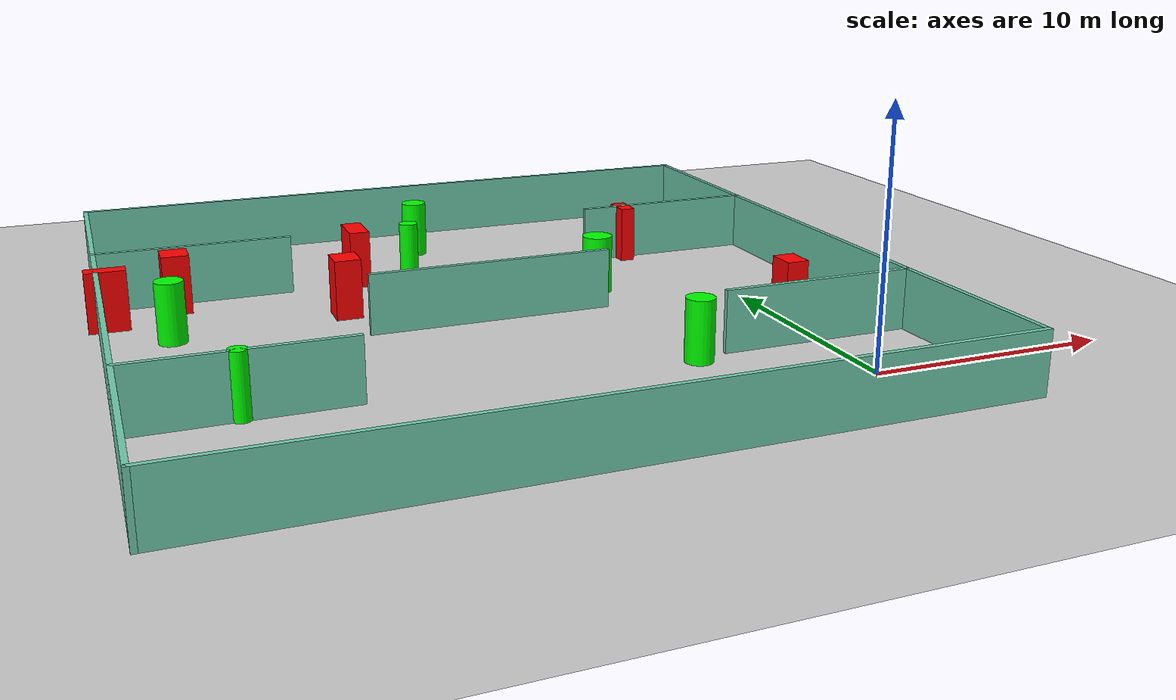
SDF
<sdf version="1.7">
 <world name="default">
  <light name="sun" type="directional">
   <pose>0 0 10 0 -0 0</pose>
   <diffuse>0.8 0.8 0.8 1</diffuse>
   <specular>0.2 0.2 0.2 1</specular>
   <attenuation>
    <range>1000</range>
    <constant>0.9</constant>
    <linear>0.01</linear>
    <quadratic>0.001</quadratic>
   </attenuation>
   <direction>-0.5 0.1 -0.9</direction>
   <spot><inner_angle>0</inner_angle><outer_angle>0</outer_angle><falloff>0</falloff></spot>
  </light>
  <model name="ground_plane">
   <static>1</static>
   <link name="link">
    <collision name="collision">
     <geometry><plane><normal>0 0 1</normal><size>100 100</size></plane></geometry>
     <surface>
      <contact><collide_bitmask>65535</collide_bitmask></contact>
      <friction><ode><mu>100</mu><mu2>50</mu2></ode></friction>
     </surface>
    </collision>
    <visual name="visual">
     <cast_shadows>0</cast_shadows>
     <geometry><plane><normal>0 0 1</normal><size>100 100</size></plane></geometry>
     <material>
      <script><uri>file://media/materials/scripts/gazebo.material</uri><name>Gazebo/Grey</name></script>
     </material>
    </visual>
   </link>
  </model>
  <gravity>0 0 -9.8</gravity>
  <magnetic_field>6e-06 2.3e-05 -4.2e-05</magnetic_field>
  <atmosphere type="adiabatic"/>
  <physics type="ode">
   <max_step_size>0.001</max_step_size>
   <real_time_factor>1</real_time_factor>
   <real_time_update_rate>1000</real_time_update_rate>
  </physics>
  <scene><ambient>0.4 0.4 0.4 1</ambient><background>0.7 0.7 0.7 1</background><shadows>1</shadows></scene>
  <spherical_coordinates>
   <surface_model>EARTH_WGS84</surface_model>
   <latitude_deg>0</latitude_deg>
   <longitude_deg>0</longitude_deg>
   <elevation>0</elevation>
   <heading_deg>0</heading_deg>
  </spherical_coordinates>
  <model name="my_base_walls">
   <link name="Wall_10">
    <collision name="Wall_10_Collision">
     <geometry><box><size>8.2 0.2 2.5</size></box></geometry>
     <pose>0 0 1.25 0 -0 0</pose>
    </collision>
    <visual name="Wall_10_Visual">
     <pose>0 0 1.25 0 -0 0</pose>
     <geometry><box><size>8.2 0.2 2.5</size></box></geometry>
     <material>
      <script><uri>file://media/materials/scripts/gazebo.material</uri><name>Gazebo/Grey</name></script>
      <ambient>0.435294 0.796078 0.67451 1</ambient>
     </material>
     <meta><layer>0</layer></meta>
    </visual>
    <pose>-11 -7 0 0 -0 0</pose>
   </link>
   <link name="Wall_12">
    <collision name="Wall_12_Collision">
     <geometry><box><size>8.2 0.2 2.5</size></box></geometry>
     <pose>0 0 1.25 0 -0 0</pose>
    </collision>
    <visual name="Wall_12_Visual">
     <pose>0 0 1.25 0 -0 0</pose>
     <geometry><box><size>8.2 0.2 2.5</size></box></geometry>
     <material>
      <script><uri>file://media/materials/scripts/gazebo.material</uri><name>Gazebo/Grey</name></script>
      <ambient>0.435294 0.796078 0.67451 1</ambient>
     </material>
     <meta><layer>0</layer></meta>
    </visual>
    <pose>-11 7 0 0 -0 0</pose>
   </link>
   <link name="Wall_14">
    <collision name="Wall_14_Collision">
     <geometry><box><size>8.2 0.2 2.5</size></box></geometry>
     <pose>0 0 1.25 0 -0 0</pose>
    </collision>
    <visual name="Wall_14_Visual">
     <pose>0 0 1.25 0 -0 0</pose>
     <geometry><box><size>8.2 0.2 2.5</size></box></geometry>
     <material>
      <script><uri>file://media/materials/scripts/gazebo.material</uri><name>Gazebo/Grey</name></script>
      <ambient>0.435294 0.796078 0.67451 1</ambient>
     </material>
     <meta><layer>0</layer></meta>
    </visual>
    <pose>11 7 0 0 -0 3.14159</pose>
   </link>
   <link name="Wall_16">
    <collision name="Wall_16_Collision">
     <geometry><box><size>10.2 0.2 2.5</size></box></geometry>
     <pose>0 0 1.25 0 -0 0</pose>
    </collision>
    <visual name="Wall_16_Visual">
     <pose>0 0 1.25 0 -0 0</pose>
     <geometry><box><size>10.2 0.2 2.5</size></box></geometry>
     <material>
      <script><uri>file://media/materials/scripts/gazebo.material</uri><name>Gazebo/Grey</name></script>
      <ambient>0.435294 0.796078 0.67451 1</ambient>
     </material>
     <meta><layer>0</layer></meta>
    </visual>
    <pose>0 0 0 0 -0 3.14159</pose>
   </link>
   <link name="Wall_2">
    <collision name="Wall_2_Collision">
     <geometry><box><size>30.2 0.2 2.5</size></box></geometry>
     <pose>0 0 1.25 0 -0 0</pose>
    </collision>
    <visual name="Wall_2_Visual">
     <pose>0 0 1.25 0 -0 0</pose>
     <geometry><box><size>30.2 0.2 2.5</size></box></geometry>
     <material>
      <script><uri>file://media/materials/scripts/gazebo.material</uri><name>Gazebo/Grey</name></script>
      <ambient>0.435294 0.796078 0.67451 1</ambient>
     </material>
     <meta><layer>0</layer></meta>
    </visual>
    <pose>0 -15 0 0 -0 3.14159</pose>
   </link>
   <link name="Wall_3">
    <collision name="Wall_3_Collision">
     <geometry><box><size>30.2 0.2 2.5</size></box></geometry>
     <pose>0 0 1.25 0 -0 0</pose>
    </collision>
    <visual name="Wall_3_Visual">
     <pose>0 0 1.25 0 -0 0</pose>
     <geometry><box><size>30.2 0.2 2.5</size></box></geometry>
     <material>
      <script><uri>file://media/materials/scripts/gazebo.material</uri><name>Gazebo/Grey</name></script>
      <ambient>0.435294 0.796078 0.67451 1</ambient>
     </material>
     <meta><layer>0</layer></meta>
    </visual>
    <pose>-15 0 0 0 -0 1.5708</pose>
   </link>
   <link name="Wall_4">
    <collision name="Wall_4_Collision">
     <geometry><box><size>30.2 0.2 2.5</size></box></geometry>
     <pose>0 0 1.25 0 -0 0</pose>
    </collision>
    <visual name="Wall_4_Visual">
     <pose>0 0 1.25 0 -0 0</pose>
     <geometry><box><size>30.2 0.2 2.5</size></box></geometry>
     <material>
      <script><uri>file://media/materials/scripts/gazebo.material</uri><name>Gazebo/Grey</name></script>
      <ambient>0.435294 0.796078 0.67451 1</ambient>
     </material>
     <meta><layer>0</layer></meta>
    </visual>
    <pose>0 15 0 0 -0 0</pose>
   </link>
   <link name="Wall_6">
    <collision name="Wall_6_Collision">
     <geometry><box><size>30.2 0.2 2.5</size></box></geometry>
     <pose>0 0 1.25 0 -0 0</pose>
    </collision>
    <visual name="Wall_6_Visual">
     <pose>0 0 1.25 0 -0 0</pose>
     <geometry><box><size>30.2 0.2 2.5</size></box></geometry>
     <material>
      <script><uri>file://media/materials/scripts/gazebo.material</uri><name>Gazebo/Grey</name></script>
      <ambient>0.435294 0.796078 0.67451 1</ambient>
     </material>
     <meta><layer>0</layer></meta>
    </visual>
    <pose>15 0 0 0 -0 1.5708</pose>
   </link>
   <link name="Wall_8">
    <collision name="Wall_8_Collision">
     <geometry><box><size>8.2 0.2 2.5</size></box></geometry>
     <pose>0 0 1.25 0 -0 0</pose>
    </collision>
    <visual name="Wall_8_Visual">
     <pose>0 0 1.25 0 -0 0</pose>
     <geometry><box><size>8.2 0.2 2.5</size></box></geometry>
     <material>
      <script><uri>file://media/materials/scripts/gazebo.material</uri><name>Gazebo/Grey</name></script>
      <ambient>0.435294 0.796078 0.67451 1</ambient>
     </material>
     <meta><layer>0</layer></meta>
    </visual>
    <pose>11 -7 0 0 -0 3.14159</pose>
   </link>
   <static>1</static>
   <pose>-11 11 0 0 -0 0</pose>
  </model>
  <model name="cylinder1">
   <static>1</static>
   <link name="link">
    <inertial>
     <mass>1</mass>
     <inertia><ixx>0.5</ixx><ixy>0</ixy><ixz>0</ixz><iyy>0.5</iyy><iyz>0</iyz><izz>1</izz></inertia>
    </inertial>
    <collision name="collision">
     <geometry><cylinder><radius>0.5579725302385168</radius><length>2.5</length></cylinder></geometry>
    </collision>
    <visual name="visual">
     <geometry><cylinder><radius>0.5579725302385168</radius><length>2.5</length></cylinder></geometry>
     <material>
      <ambient>0 1 0 1</ambient>
      <diffuse>0 1 0 1</diffuse>
      <specular>0.1 0.1 0.1 1</specular>
      <emissive>0 0 0 0</emissive>
     </material>
    </visual>
   </link>
   <pose>-11.262279370116017 22.202742519509272 1.25 0 0 0</pose>
  </model>
  <model name="cylinder2">
   <static>1</static>
   <link name="link">
    <inertial>
     <mass>1</mass>
     <inertia><ixx>0.5</ixx><ixy>0</ixy><ixz>0</ixz><iyy>0.5</iyy><iyz>0</iyz><izz>1</izz></inertia>
    </inertial>
    <collision name="collision">
     <geometry><cylinder><radius>0.3491001053050091</radius><length>2.5</length></cylinder></geometry>
    </collision>
    <visual name="visual">
     <geometry><cylinder><radius>0.3491001053050091</radius><length>2.5</length></cylinder></geometry>
     <material>
      <ambient>0 1 0 1</ambient>
      <diffuse>0 1 0 1</diffuse>
      <specular>0.1 0.1 0.1 1</specular>
      <emissive>0 0 0 0</emissive>
     </material>
    </visual>
   </link>
   <pose>-22.049387575619292 4.066773186109945 1.25 0 0 0</pose>
  </model>
  <model name="cylinder3">
   <static>1</static>
   <link name="link">
    <inertial>
     <mass>1</mass>
     <inertia><ixx>0.5</ixx><ixy>0</ixy><ixz>0</ixz><iyy>0.5</iyy><iyz>0</iyz><izz>1</izz></inertia>
    </inertial>
    <collision name="collision">
     <geometry><cylinder><radius>0.5693643322824331</radius><length>2.5</length></cylinder></geometry>
    </collision>
    <visual name="visual">
     <geometry><cylinder><radius>0.5693643322824331</radius><length>2.5</length></cylinder></geometry>
     <material>
      <ambient>0 1 0 1</ambient>
      <diffuse>0 1 0 1</diffuse>
      <specular>0.1 0.1 0.1 1</specular>
      <emissive>0 0 0 0</emissive>
     </material>
    </visual>
   </link>
   <pose>-23.437402359612438 12.925982858308483 1.25 0 0 0</pose>
  </model>
  <model name="cylinder4">
   <static>1</static>
   <link name="link">
    <inertial>
     <mass>1</mass>
     <inertia><ixx>0.5</ixx><ixy>0</ixy><ixz>0</ixz><iyy>0.5</iyy><iyz>0</iyz><izz>1</izz></inertia>
    </inertial>
    <collision name="collision">
     <geometry><cylinder><radius>0.5693884280804267</radius><length>2.5</length></cylinder></geometry>
    </collision>
    <visual name="visual">
     <geometry><cylinder><radius>0.5693884280804267</radius><length>2.5</length></cylinder></geometry>
     <material>
      <ambient>0 1 0 1</ambient>
      <diffuse>0 1 0 1</diffuse>
      <specular>0.1 0.1 0.1 1</specular>
      <emissive>0 0 0 0</emissive>
     </material>
    </visual>
   </link>
   <pose>-5.399479261506544 3.552533803605538 1.25 0 0 0</pose>
  </model>
  <model name="cylinder5">
   <static>1</static>
   <link name="link">
    <inertial>
     <mass>1</mass>
     <inertia><ixx>0.5</ixx><ixy>0</ixy><ixz>0</ixz><iyy>0.5</iyy><iyz>0</iyz><izz>1</izz></inertia>
    </inertial>
    <collision name="collision">
     <geometry><cylinder><radius>0.6435640633988724</radius><length>2.5</length></cylinder></geometry>
    </collision>
    <visual name="visual">
     <geometry><cylinder><radius>0.6435640633988724</radius><length>2.5</length></cylinder></geometry>
     <material>
      <ambient>0 1 0 1</ambient>
      <diffuse>0 1 0 1</diffuse>
      <specular>0.1 0.1 0.1 1</specular>
      <emissive>0 0 0 0</emissive>
     </material>
    </visual>
   </link>
   <pose>-5.450541303918541 13.219368344612818 1.25 0 0 0</pose>
  </model>
  <model name="cylinder6">
   <static>1</static>
   <link name="link">
    <inertial>
     <mass>1</mass>
     <inertia><ixx>0.5</ixx><ixy>0</ixy><ixz>0</ixz><iyy>0.5</iyy><iyz>0</iyz><izz>1</izz></inertia>
    </inertial>
    <collision name="collision">
     <geometry><cylinder><radius>0.40957887935857357</radius><length>2.5</length></cylinder></geometry>
    </collision>
    <visual name="visual">
     <geometry><cylinder><radius>0.40957887935857357</radius><length>2.5</length></cylinder></geometry>
     <material>
      <ambient>0 1 0 1</ambient>
      <diffuse>0 1 0 1</diffuse>
      <specular>0.1 0.1 0.1 1</specular>
      <emissive>0 0 0 0</emissive>
     </material>
    </visual>
   </link>
   <pose>-12.534564605574994 18.375765863233063 1.25 0 0 0</pose>
  </model>
  <model name="box1">
   <static>1</static>
   <link name="link">
    <inertial>
     <mass>1</mass>
     <inertia><ixx>0.083</ixx><ixy>0</ixy><ixz>0</ixz><iyy>0.083</iyy><iyz>0</iyz><izz>0.083</izz></inertia>
    </inertial>
    <collision name="collision">
     <geometry><box><size>1.6070765270049365 0.6393457885227646 2.5</size></box></geometry>
    </collision>
    <visual name="visual">
     <geometry><box><size>1.6070765270049365 0.6393457885227646 2.5</size></box></geometry>
     <material>
      <ambient>1 0 0 1</ambient>
      <diffuse>1 0 0 1</diffuse>
      <specular>0.1 0.1 0.1 1</specular>
      <emissive>0 0 0 0</emissive>
     </material>
    </visual>
    <sensor name="my_contact" type="contact">
     <contact><collision>box_collision</collision><topic>__default_topic__</topic></contact>
    </sensor>
   </link>
   <pose>-25.658917813409012 15.360191830447778 1.25 0 0 0</pose>
  </model>
  <model name="box2">
   <static>1</static>
   <link name="link">
    <inertial>
     <mass>1</mass>
     <inertia><ixx>0.083</ixx><ixy>0</ixy><ixz>0</ixz><iyy>0.083</iyy><iyz>0</iyz><izz>0.083</izz></inertia>
    </inertial>
    <collision name="collision">
     <geometry><box><size>1.092133683695376 1.2587322745588643 2.5</size></box></geometry>
    </collision>
    <visual name="visual">
     <geometry><box><size>1.092133683695376 1.2587322745588643 2.5</size></box></geometry>
     <material>
      <ambient>1 0 0 1</ambient>
      <diffuse>1 0 0 1</diffuse>
      <specular>0.1 0.1 0.1 1</specular>
      <emissive>0 0 0 0</emissive>
     </material>
    </visual>
    <sensor name="my_contact" type="contact">
     <contact><collision>box_collision</collision><topic>__default_topic__</topic></contact>
    </sensor>
   </link>
   <pose>-16.418681380510016 13.81174777703605 1.25 0 0 0</pose>
  </model>
  <model name="box3">
   <static>1</static>
   <link name="link">
    <inertial>
     <mass>1</mass>
     <inertia><ixx>0.083</ixx><ixy>0</ixy><ixz>0</ixz><iyy>0.083</iyy><iyz>0</iyz><izz>0.083</izz></inertia>
    </inertial>
    <collision name="collision">
     <geometry><box><size>1.117169828025218 1.2346576009019803 2.5</size></box></geometry>
    </collision>
    <visual name="visual">
     <geometry><box><size>1.117169828025218 1.2346576009019803 2.5</size></box></geometry>
     <material>
      <ambient>1 0 0 1</ambient>
      <diffuse>1 0 0 1</diffuse>
      <specular>0.1 0.1 0.1 1</specular>
      <emissive>0 0 0 0</emissive>
     </material>
    </visual>
    <sensor name="my_contact" type="contact">
     <contact><collision>box_collision</collision><topic>__default_topic__</topic></contact>
    </sensor>
   </link>
   <pose>-22.87621229084442 17.002768415210433 1.25 0 0 0</pose>
  </model>
  <model name="box4">
   <static>1</static>
   <link name="link">
    <inertial>
     <mass>1</mass>
     <inertia><ixx>0.083</ixx><ixy>0</ixy><ixz>0</ixz><iyy>0.083</iyy><iyz>0</iyz><izz>0.083</izz></inertia>
    </inertial>
    <collision name="collision">
     <geometry><box><size>0.869042608642671 1.8197851283758326 2.5</size></box></geometry>
    </collision>
    <visual name="visual">
     <geometry><box><size>0.869042608642671 1.8197851283758326 2.5</size></box></geometry>
     <material>
      <ambient>1 0 0 1</ambient>
      <diffuse>1 0 0 1</diffuse>
      <specular>0.1 0.1 0.1 1</specular>
      <emissive>0 0 0 0</emissive>
     </material>
    </visual>
    <sensor name="my_contact" type="contact">
     <contact><collision>box_collision</collision><topic>__default_topic__</topic></contact>
    </sensor>
   </link>
   <pose>-14.963195354888482 18.382734230873933 1.25 0 0 0</pose>
  </model>
  <model name="box5">
   <static>1</static>
   <link name="link">
    <inertial>
     <mass>1</mass>
     <inertia><ixx>0.083</ixx><ixy>0</ixy><ixz>0</ixz><iyy>0.083</iyy><iyz>0</iyz><izz>0.083</izz></inertia>
    </inertial>
    <collision name="collision">
     <geometry><box><size>0.63592997597848 1.3112786348558831 2.5</size></box></geometry>
    </collision>
    <visual name="visual">
     <geometry><box><size>0.63592997597848 1.3112786348558831 2.5</size></box></geometry>
     <material>
      <ambient>1 0 0 1</ambient>
      <diffuse>1 0 0 1</diffuse>
      <specular>0.1 0.1 0.1 1</specular>
      <emissive>0 0 0 0</emissive>
     </material>
    </visual>
    <sensor name="my_contact" type="contact">
     <contact><collision>box_collision</collision><topic>__default_topic__</topic></contact>
    </sensor>
   </link>
   <pose>-2.159282015891982 17.88108460888302 1.25 0 0 0</pose>
  </model>
  <model name="box6">
   <static>1</static>
   <link name="link">
    <inertial>
     <mass>1</mass>
     <inertia><ixx>0.083</ixx><ixy>0</ixy><ixz>0</ixz><iyy>0.083</iyy><iyz>0</iyz><izz>0.083</izz></inertia>
    </inertial>
    <collision name="collision">
     <geometry><box><size>0.946227797692637 1.197192902263183 2.5</size></box></geometry>
    </collision>
    <visual name="visual">
     <geometry><box><size>0.946227797692637 1.197192902263183 2.5</size></box></geometry>
     <material>
      <ambient>1 0 0 1</ambient>
      <diffuse>1 0 0 1</diffuse>
      <specular>0.1 0.1 0.1 1</specular>
      <emissive>0 0 0 0</emissive>
     </material>
    </visual>
    <sensor name="my_contact" type="contact">
     <contact><collision>box_collision</collision><topic>__default_topic__</topic></contact>
    </sensor>
   </link>
   <pose>0.4659817220969593 6.95739608918025 1.25 0 0 0</pose>
  </model>
 </world>
</sdf>
